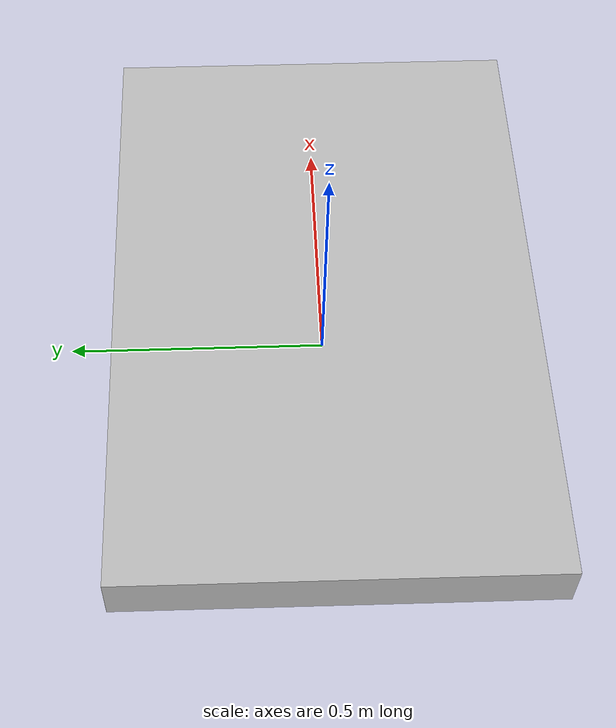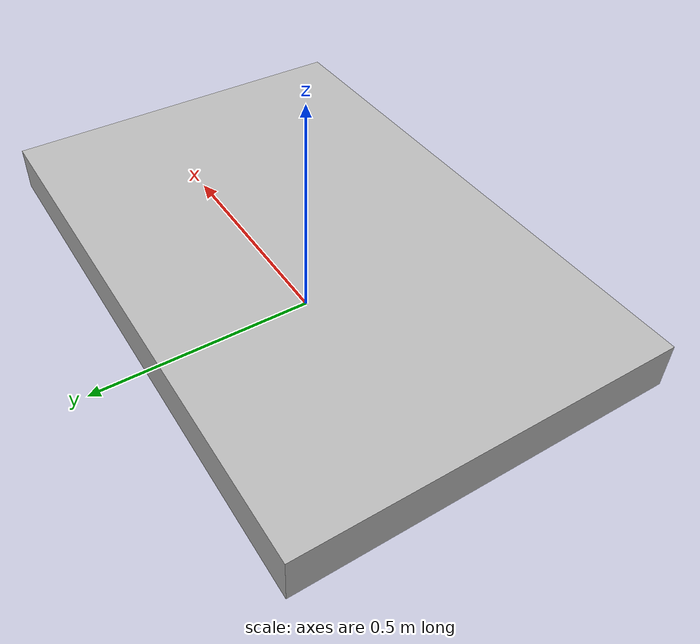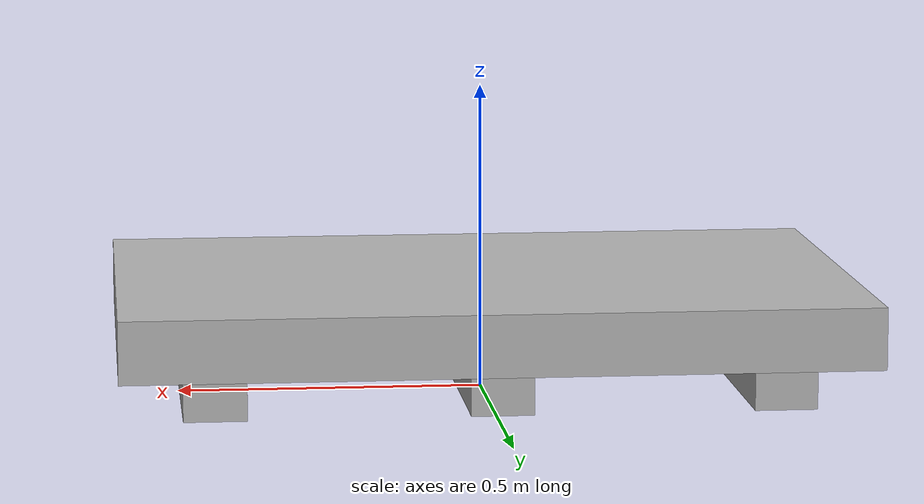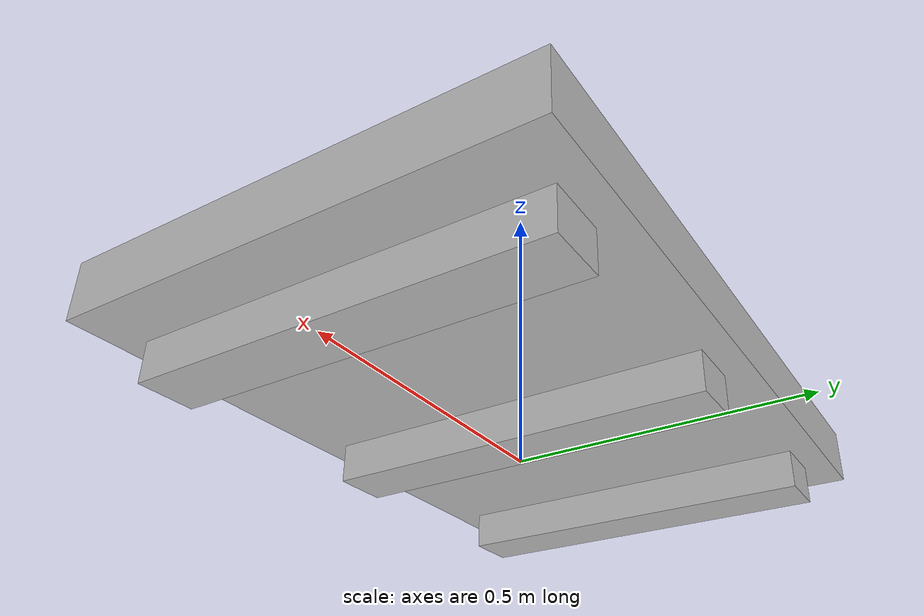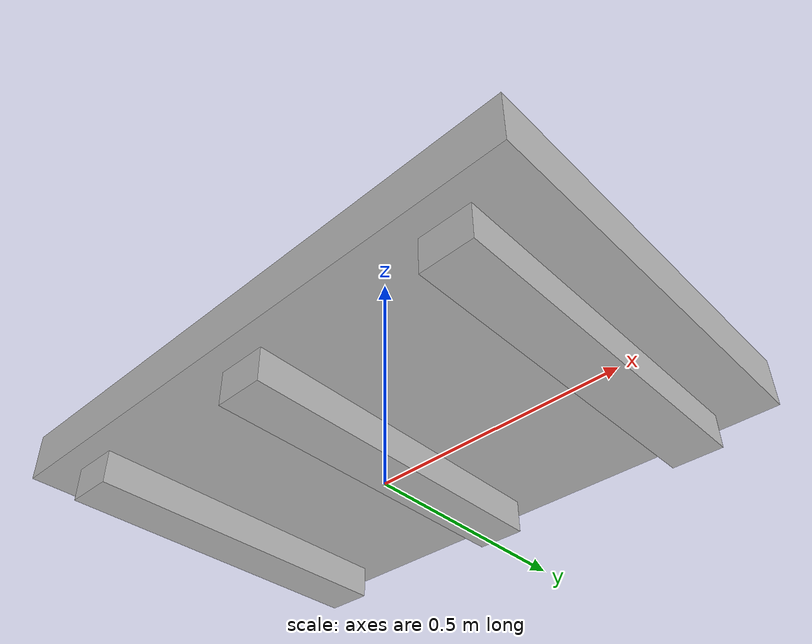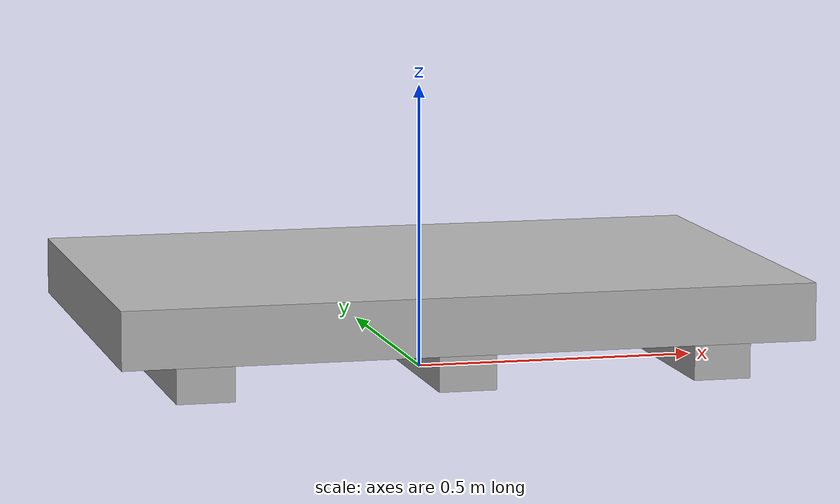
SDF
<?xml version="1.0"?>

<sdf version="1.10">

  <model name="pallet">

    <static>true</static>

    <link name="pallet_link">

      <!-- TOP                          -->

      <visual name="top_visual">

        <pose>0 0 0.14 0 0 0</pose>

        <geometry>

          <box>
            <size>1.2 0.8 0.1</size>
          </box>

        </geometry>

      </visual>

      <collision name="top_collision">

        <pose>0 0 0.14 0 0 0</pose>

        <geometry>

          <box>
            <size>1.2 0.8 0.1</size>
          </box>

        </geometry>

      </collision>

      <!-- SUPPORT 1                    -->

      <visual name="support_1_visual">

        <pose>0.45 0 0.07 0 0 0</pose>

        <geometry>

          <box>
            <size>0.1 0.7 0.1</size>
          </box>

        </geometry>

      </visual>

      <collision name="support_1_collision">

        <pose>0.45 0 0.07 0 0 0</pose>

        <geometry>

          <box>
            <size>0.1 0.7 0.1</size>
          </box>

        </geometry>

      </collision>

      <!-- SUPPORT 2                    -->

      <visual name="support_2_visual">

        <pose>-0.45 0 0.07 0 0 0</pose>

        <geometry>

          <box>
            <size>0.1 0.7 0.1</size>
          </box>

        </geometry>

      </visual>

      <collision name="support_2_collision">

        <pose>-0.45 0 0.07 0 0 0</pose>

        <geometry>

          <box>
            <size>0.1 0.7 0.1</size>
          </box>

        </geometry>

      </collision>

      <!-- CENTER SUPPORT               -->

      <visual name="support_center_visual">

        <pose>0 0 0.07 0 0 0</pose>

        <geometry>

          <box>
            <size>0.1 0.7 0.1</size>
          </box>

        </geometry>

      </visual>

      <collision name="support_center_collision">

        <pose>0 0 0.07 0 0 0</pose>

        <geometry>

          <box>
            <size>0.1 0.7 0.1</size>
          </box>

        </geometry>

      </collision>

    </link>

  </model>

</sdf>
